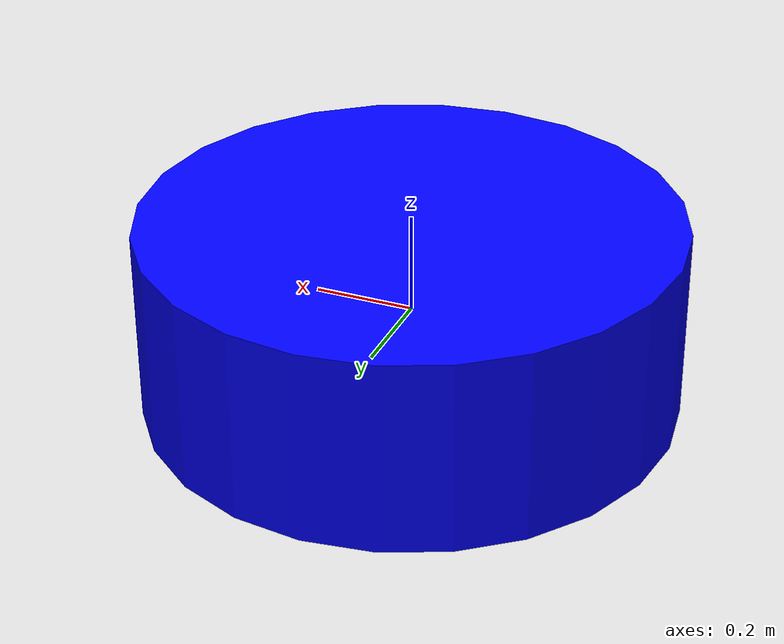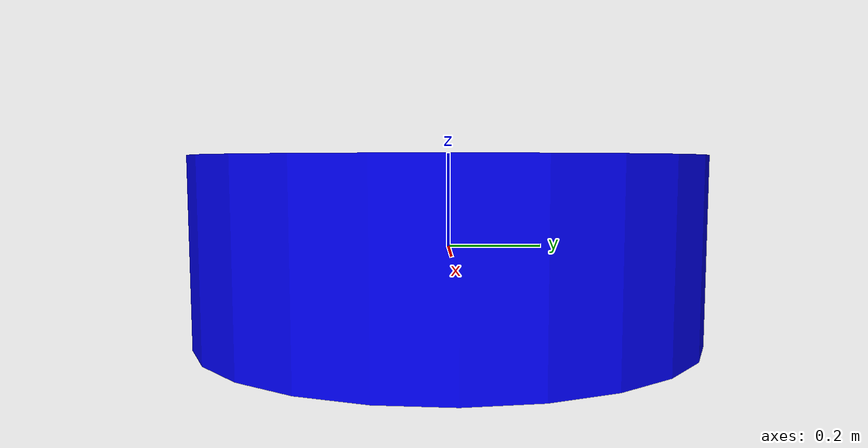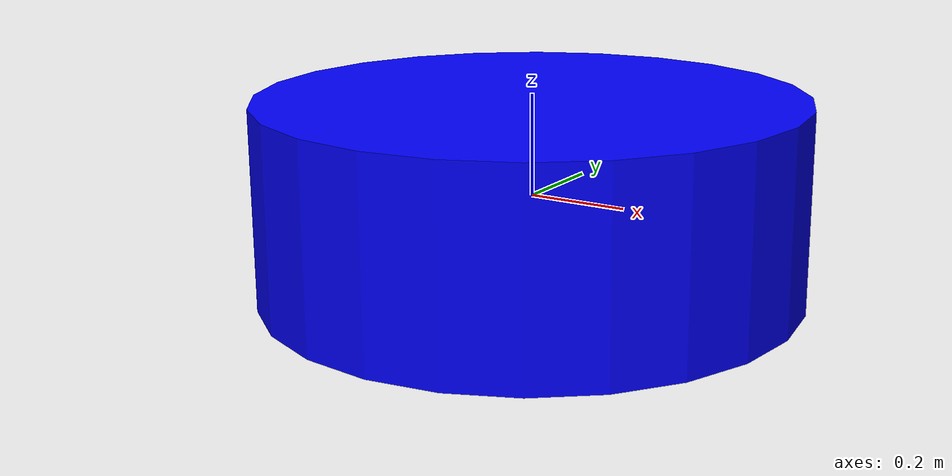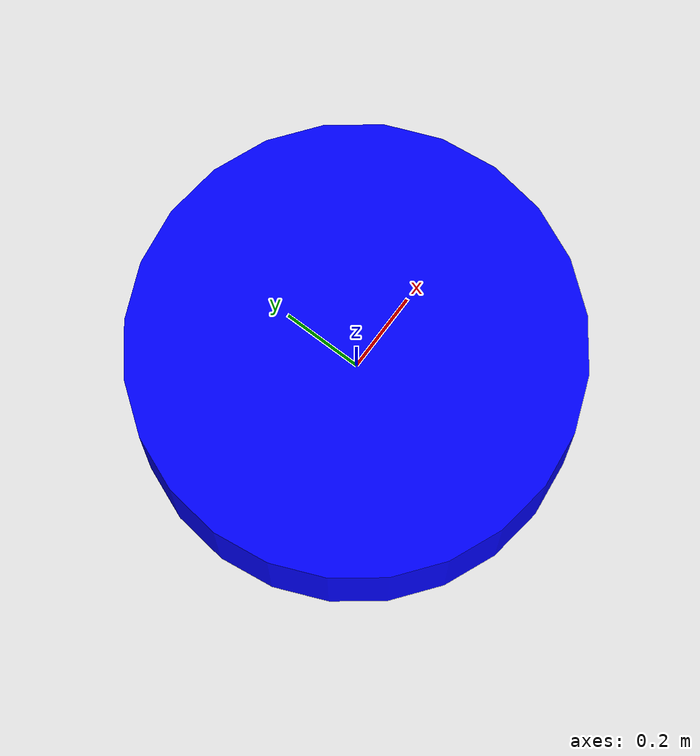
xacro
<?xml version="1.0"?>
<robot xmlns:xacro="http://www.ros.org/wiki/xacro" name="cylinder">

    <xacro:arg name="name" default="cylinder"/>
    <xacro:arg name="height" default="0.3904"/>
    <xacro:arg name="radius" default="0.5361"/>
    <xacro:arg name="mass" default="2"/>
    <xacro:arg name="static" default="false"/>
    <xacro:arg name="r" default="0"/>
    <xacro:arg name="g" default="0"/>
    <xacro:arg name="b" default="1"/>
    <xacro:arg name="a" default="1"/>
    <xacro:arg name="gazebo_color" default="Gazebo/Blue"/>
    <xacro:arg name="kp" default="1e13"/>
    <xacro:arg name="kd" default="1"/>
    <xacro:arg name="mu1" default="0.8"/>
    <xacro:arg name="mu2" default="0.8"/>

    <xacro:property name="name" value="$(arg name)"/>
    <xacro:property name="height" value="$(arg height)"/>
    <xacro:property name="radius" value="$(arg radius)"/>
    <xacro:property name="mass" value="$(arg mass)"/>
    <xacro:property name="static" value="$(arg static)"/>
    <xacro:property name="r" value="$(arg r)"/>
    <xacro:property name="g" value="$(arg g)"/>
    <xacro:property name="b" value="$(arg b)"/>
    <xacro:property name="a" value="$(arg a)"/>
    <xacro:property name="gazebo_color" value="$(arg gazebo_color)"/>
    <xacro:property name="kp" value="$(arg kp)"/>
    <xacro:property name="kd" value="$(arg kd)"/>
    <xacro:property name="mu1" value="$(arg mu1)"/>
    <xacro:property name="mu2" value="$(arg mu2)"/>

    <link name="${name}">
		<inertial>
            <mass value="${mass}" />
			<!-- cylindrical shell : Izz=m*r^2; Ixx=Iyy=1/12*m*(6*r^2+h^2) -->
			<!-- solid cylinder : Izz=(m*r^2)/2; Ixx=Iyy=1/12*m*(3*r^2+h^2) -->
			<inertia
                ixx="${0.083 * mass * (3*radius*radius+(height*height))}" ixy="0.0"  ixz="0.0"
                iyy="${0.083 * mass * (3*radius*radius+(height*height))}" iyz="0.0"
                izz="${0.5 * mass * radius * radius}" />
		</inertial>
		<visual>
			<origin xyz="0 0 0" rpy="0 0 0"/>
			<geometry>
				<cylinder length="${height}" radius="${radius}"/>
			</geometry>
            <material name="cyl_color_rviz">
                <color rgba="${r} ${g} ${b} ${a}"/>
                <ambient>0 0 0 1</ambient>
                <diffuse>0 0 0 1</diffuse>
                <specular>0 0 0 1</specular>
                <emissive>0 0 0 1</emissive>
            </material>
		</visual>
		<collision>
			<origin xyz="0 0 0" rpy="0 0 0"/>
			<geometry>
				<cylinder length="${height}" radius="${radius}"/>
			</geometry>
		</collision>
	</link>

    <gazebo>
        <static>${static}</static>
    </gazebo>
    <gazebo reference="${name}">
        <mu1>${mu1}</mu1>
        <mu2>${mu2}</mu2>
        <kp>${kp}</kp>
        <kd>${kd}</kd>
        <material>${gazebo_color}</material>
    </gazebo>

</robot>
